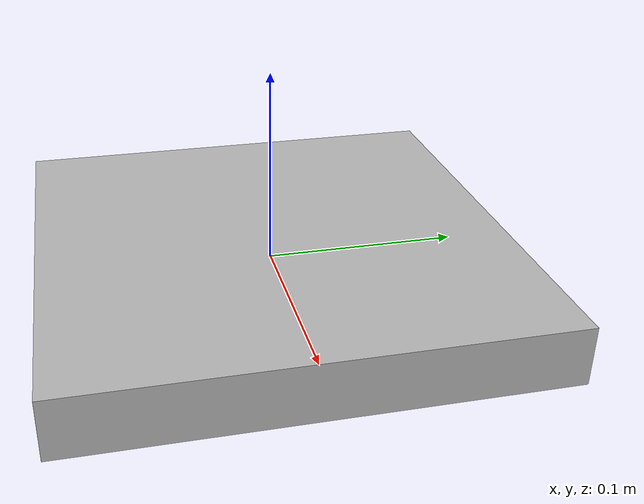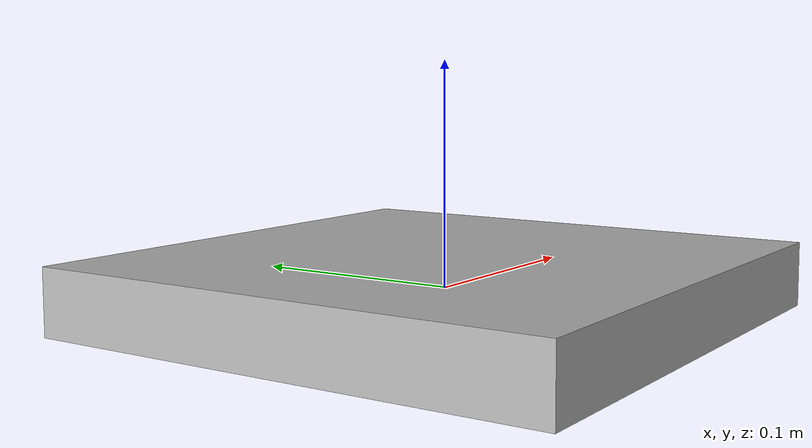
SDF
<?xml version="1.0" encoding="UTF-8"?>
<sdf version="1.4">
   <model name="aruco">
      <link name="link">
         <inertial>
            <inertia>
               <ixx>0.004800083</ixx>
               <ixy>0</ixy>
               <ixz>0</ixz>
               <iyy>0.00480083</iyy>
               <iyz>0</iyz>
               <izz>0.0096</izz>
            </inertia>
            <mass>1.0</mass>
         </inertial>
         <collision name="collision">
            <geometry>
               <box>
                  <size>0.24 0.24 0.03</size>
               </box>
            </geometry>
            <surface>
               <friction>
                  <ode>
                     <mu>100</mu>
                     <mu2>50</mu2>
                  </ode>
               </friction>
            </surface>
         </collision>
         <visual name="visual">
            <cast_shadows>false</cast_shadows>
            <geometry>
               <box>
                  <size>0.24 0.24 0.03</size>
               </box>
            </geometry>
            <material>
               <script>
                  <uri>/home/zhitao/Project/ur_ws/src/easy_handeye/easy_handeye/urdf/aruco/materials/scripts</uri>
                  <uri>/home/zhitao/Project/ur_ws/src/easy_handeye/easy_handeye/urdf/aruco/materials/textures/</uri>
                  <name>aruco/Image</name>
               </script>
            </material>
         </visual>
      </link>
   </model>
</sdf>
